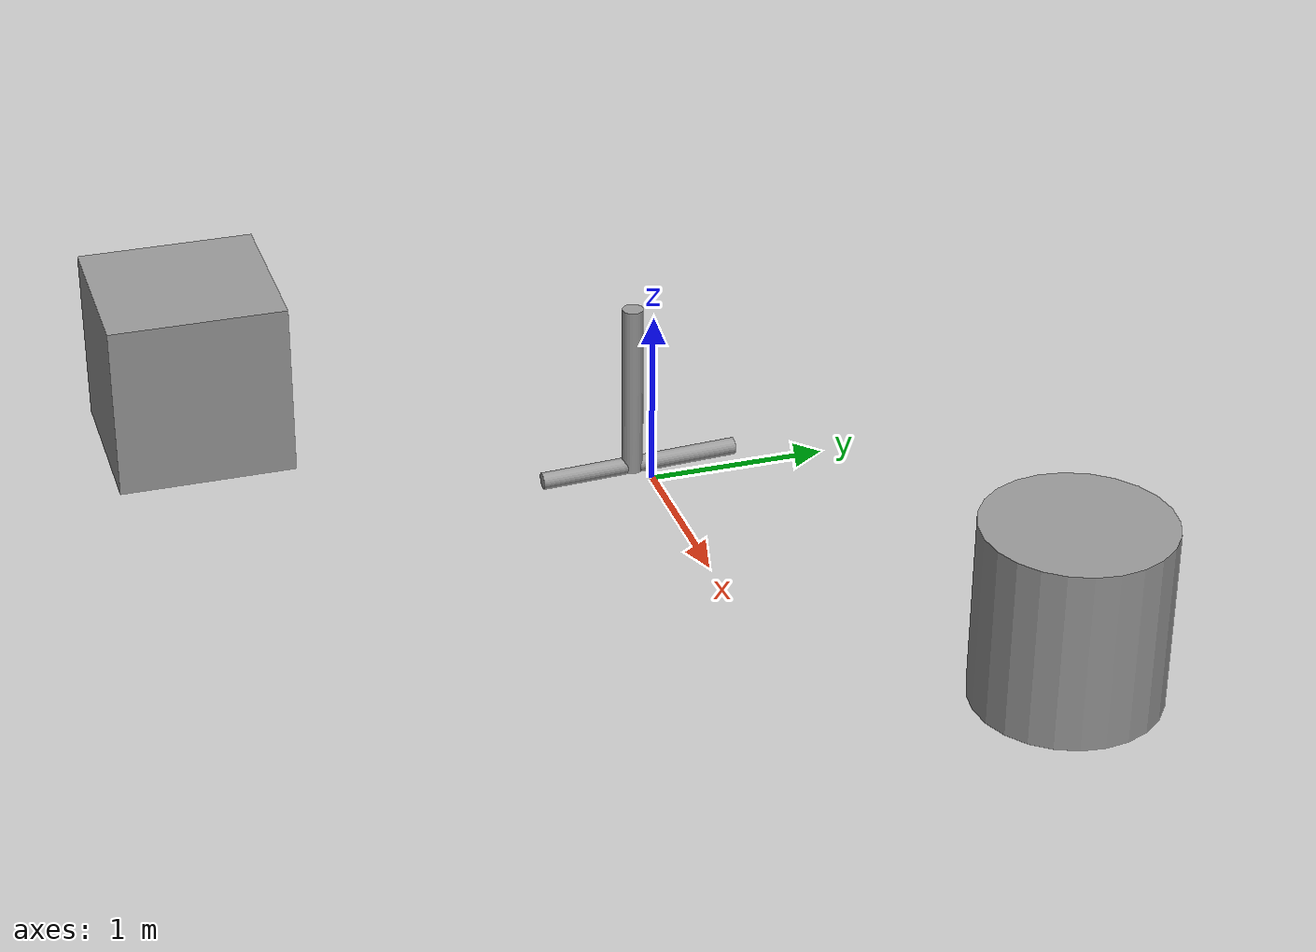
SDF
<sdf version="1.6">
 <world name="default">
  <light name="sun" type="directional">
   <pose>0 0 10 0 -0 0</pose>
   <diffuse>0.8 0.8 0.8 1</diffuse>
   <specular>0.2 0.2 0.2 1</specular>
   <attenuation>
    <range>1000</range>
    <constant>0.9</constant>
    <linear>0.01</linear>
    <quadratic>0.001</quadratic>
   </attenuation>
   <direction>-0.5 0.1 -0.9</direction>
  </light>
  <model name="ground_plane">
   <static>1</static>
   <link name="link">
    <collision name="collision">
     <geometry><plane><normal>0 0 1</normal><size>100 100</size></plane></geometry>
     <surface><friction><ode><mu>100</mu><mu2>50</mu2></ode></friction></surface>
    </collision>
    <visual name="visual">
     <cast_shadows>0</cast_shadows>
     <geometry><plane><normal>0 0 1</normal><size>100 100</size></plane></geometry>
     <material>
      <script><uri>file://media/materials/scripts/gazebo.material</uri><name>Gazebo/Grey</name></script>
     </material>
    </visual>
   </link>
  </model>
  <gravity>0 0 -9.8</gravity>
  <magnetic_field>6e-06 2.3e-05 -4.2e-05</magnetic_field>
  <atmosphere type="adiabatic"/>
  <physics name="default_physics" default="0" type="ode">
   <max_step_size>0.001</max_step_size>
   <real_time_factor>1</real_time_factor>
   <real_time_update_rate>1000</real_time_update_rate>
  </physics>
  <scene><ambient>0.4 0.4 0.4 1</ambient><background>0.7 0.7 0.7 1</background><shadows>1</shadows></scene>
  <spherical_coordinates>
   <surface_model>EARTH_WGS84</surface_model>
   <latitude_deg>0</latitude_deg>
   <longitude_deg>0</longitude_deg>
   <elevation>0</elevation>
   <heading_deg>0</heading_deg>
  </spherical_coordinates>
  <model name="inverted_pendulum">
   <link name="link_0">
    <pose>-14.3863 0.112 0.724204 0 -0 0</pose>
    <inertial>
     <mass>0.0514305</mass>
     <inertia>
      <ixx>0.0337329</ixx>
      <ixy>0</ixy>
      <ixz>0</ixz>
      <iyy>0.0337329</iyy>
      <iyz>0</iyz>
      <izz>0.000117957</izz>
     </inertia>
    </inertial>
    <visual name="visual">
     <geometry><cylinder><radius>0.0677269</radius><length>2.80305</length></cylinder></geometry>
     <material>
      <lighting>1</lighting>
      <script><uri>file://media/materials/scripts/gazebo.material</uri><name>Gazebo/Grey</name></script>
      <ambient>0.3 0.3 0.3 1</ambient>
      <diffuse>0.7 0.7 0.7 1</diffuse>
      <specular>0.01 0.01 0.01 1</specular>
      <emissive>0 0 0 1</emissive>
     </material>
    </visual>
    <collision name="collision">
     <geometry><cylinder><radius>0.067727</radius><length>2.80306</length></cylinder></geometry>
     <surface>
      <friction>
       <ode><mu>1</mu><mu2>1</mu2><fdir1>0 0 0</fdir1><slip1>0</slip1><slip2>0</slip2></ode>
       <torsional>
        <coefficient>1</coefficient>
        <patch_radius>0</patch_radius>
        <surface_radius>0</surface_radius>
        <use_patch_radius>1</use_patch_radius>
        <ode><slip>0</slip></ode>
       </torsional>
      </friction>
      <bounce><restitution_coefficient>0</restitution_coefficient><threshold>1e+06</threshold></bounce>
      <contact>
       <collide_without_contact>0</collide_without_contact>
       <collide_without_contact_bitmask>1</collide_without_contact_bitmask>
       <collide_bitmask>1</collide_bitmask>
       <ode>
        <soft_cfm>0</soft_cfm>
        <soft_erp>0.2</soft_erp>
        <kp>1e+13</kp>
        <kd>1</kd>
        <max_vel>0.01</max_vel>
        <min_depth>0</min_depth>
       </ode>
       <bullet>
        <split_impulse>1</split_impulse>
        <split_impulse_penetration_threshold>-0.01</split_impulse_penetration_threshold>
        <soft_cfm>0</soft_cfm>
        <soft_erp>0.2</soft_erp>
        <kp>1e+13</kp>
        <kd>1</kd>
       </bullet>
      </contact>
     </surface>
    </collision>
   </link>
   <link name="link_1">
    <pose>7.19315 -411.039 -0.598676 1.60917 -0 0</pose>
    <inertial>
     <mass>0.009877</mass>
     <inertia>
      <ixx>0.00103572</ixx>
      <ixy>0</ixy>
      <ixz>0</ixz>
      <iyy>0.00103572</iyy>
      <iyz>0</iyz>
      <izz>1.08995e-05</izz>
     </inertia>
    </inertial>
    <visual name="visual">
     <geometry><cylinder><radius>0.0469786</radius><length>1.11882</length></cylinder></geometry>
     <material>
      <lighting>1</lighting>
      <script><uri>file://media/materials/scripts/gazebo.material</uri><name>Gazebo/Grey</name></script>
      <ambient>0.3 0.3 0.3 1</ambient>
      <diffuse>0.7 0.7 0.7 1</diffuse>
      <specular>0.01 0.01 0.01 1</specular>
      <emissive>0 0 0 1</emissive>
     </material>
    </visual>
    <collision name="collision">
     <geometry><cylinder><radius>0.046979</radius><length>1.11882</length></cylinder></geometry>
     <surface>
      <friction>
       <ode><mu>1</mu><mu2>1</mu2><fdir1>0 0 0</fdir1><slip1>0</slip1><slip2>0</slip2></ode>
       <torsional>
        <coefficient>1</coefficient>
        <patch_radius>0</patch_radius>
        <surface_radius>0</surface_radius>
        <use_patch_radius>1</use_patch_radius>
        <ode><slip>0</slip></ode>
       </torsional>
      </friction>
      <bounce><restitution_coefficient>0</restitution_coefficient><threshold>1e+06</threshold></bounce>
      <contact>
       <collide_without_contact>0</collide_without_contact>
       <collide_without_contact_bitmask>1</collide_without_contact_bitmask>
       <collide_bitmask>1</collide_bitmask>
       <ode>
        <soft_cfm>0</soft_cfm>
        <soft_erp>0.2</soft_erp>
        <kp>1e+13</kp>
        <kd>1</kd>
        <max_vel>0.01</max_vel>
        <min_depth>0</min_depth>
       </ode>
       <bullet>
        <split_impulse>1</split_impulse>
        <split_impulse_penetration_threshold>-0.01</split_impulse_penetration_threshold>
        <soft_cfm>0</soft_cfm>
        <soft_erp>0.2</soft_erp>
        <kp>1e+13</kp>
        <kd>1</kd>
       </bullet>
      </contact>
     </surface>
    </collision>
   </link>
   <link name="link_2">
    <pose>7.19307 -411.077 -0.125523 0 -0 0</pose>
    <inertial>
     <mass>0.0137553</mass>
     <inertia>
      <ixx>0.0011581</ixx>
      <ixy>0</ixy>
      <ixz>0</ixz>
      <iyy>0.0011581</iyy>
      <iyz>0</iyz>
      <izz>2.36509e-05</izz>
     </inertia>
    </inertial>
    <visual name="visual">
     <geometry><cylinder><radius>0.0586417</radius><length>1</length></cylinder></geometry>
     <material>
      <lighting>1</lighting>
      <script><uri>file://media/materials/scripts/gazebo.material</uri><name>Gazebo/Grey</name></script>
      <ambient>0.3 0.3 0.3 1</ambient>
      <diffuse>0.7 0.7 0.7 1</diffuse>
      <specular>0.01 0.01 0.01 1</specular>
      <emissive>0 0 0 1</emissive>
     </material>
    </visual>
    <collision name="collision">
     <geometry><cylinder><radius>0.058642</radius><length>1</length></cylinder></geometry>
     <surface>
      <friction>
       <ode><mu>1</mu><mu2>1</mu2><fdir1>0 0 0</fdir1><slip1>0</slip1><slip2>0</slip2></ode>
       <torsional>
        <coefficient>1</coefficient>
        <patch_radius>0</patch_radius>
        <surface_radius>0</surface_radius>
        <use_patch_radius>1</use_patch_radius>
        <ode><slip>0</slip></ode>
       </torsional>
      </friction>
      <bounce><restitution_coefficient>0</restitution_coefficient><threshold>1e+06</threshold></bounce>
      <contact>
       <collide_without_contact>0</collide_without_contact>
       <collide_without_contact_bitmask>1</collide_without_contact_bitmask>
       <collide_bitmask>1</collide_bitmask>
       <ode>
        <soft_cfm>0</soft_cfm>
        <soft_erp>0.2</soft_erp>
        <kp>1e+13</kp>
        <kd>1</kd>
        <max_vel>0.01</max_vel>
        <min_depth>0</min_depth>
       </ode>
       <bullet>
        <split_impulse>1</split_impulse>
        <split_impulse_penetration_threshold>-0.01</split_impulse_penetration_threshold>
        <soft_cfm>0</soft_cfm>
        <soft_erp>0.2</soft_erp>
        <kp>1e+13</kp>
        <kd>1</kd>
       </bullet>
      </contact>
     </surface>
    </collision>
   </link>
   <joint name="link_1_JOINT_0" type="fixed">
    <parent>link_1</parent>
    <child>link_2</child>
    <physics>
     <ode><limit><cfm>0</cfm><erp>0.2</erp></limit><suspension><cfm>0</cfm><erp>0.2</erp></suspension></ode>
    </physics>
   </joint>
   <static>0</static>
   <pose>-7.18278 410.954 0.711261 0 -0 0</pose>
  </model>
  <model name="unit_box">
   <pose>-1.1815 -2.38882 0.5 0 -0 0</pose>
   <link name="link">
    <inertial>
     <mass>1</mass>
     <inertia>
      <ixx>0.166667</ixx>
      <ixy>0</ixy>
      <ixz>0</ixz>
      <iyy>0.166667</iyy>
      <iyz>0</iyz>
      <izz>0.166667</izz>
     </inertia>
    </inertial>
    <collision name="collision"><geometry><box><size>1 1 1</size></box></geometry></collision>
    <visual name="visual">
     <geometry><box><size>1 1 1</size></box></geometry>
     <material>
      <script><name>Gazebo/Grey</name><uri>file://media/materials/scripts/gazebo.material</uri></script>
     </material>
    </visual>
   </link>
  </model>
  <model name="unit_cylinder">
   <pose>2.66664 1.32951 0.5 0 -0 0</pose>
   <link name="link">
    <inertial>
     <mass>1</mass>
     <inertia><ixx>0.145833</ixx><ixy>0</ixy><ixz>0</ixz><iyy>0.145833</iyy><iyz>0</iyz><izz>0.125</izz></inertia>
    </inertial>
    <collision name="collision">
     <geometry><cylinder><radius>0.5</radius><length>1</length></cylinder></geometry>
    </collision>
    <visual name="visual">
     <geometry><cylinder><radius>0.5</radius><length>1</length></cylinder></geometry>
     <material>
      <script><name>Gazebo/Grey</name><uri>file://media/materials/scripts/gazebo.material</uri></script>
     </material>
    </visual>
   </link>
  </model>
 </world>
</sdf>
